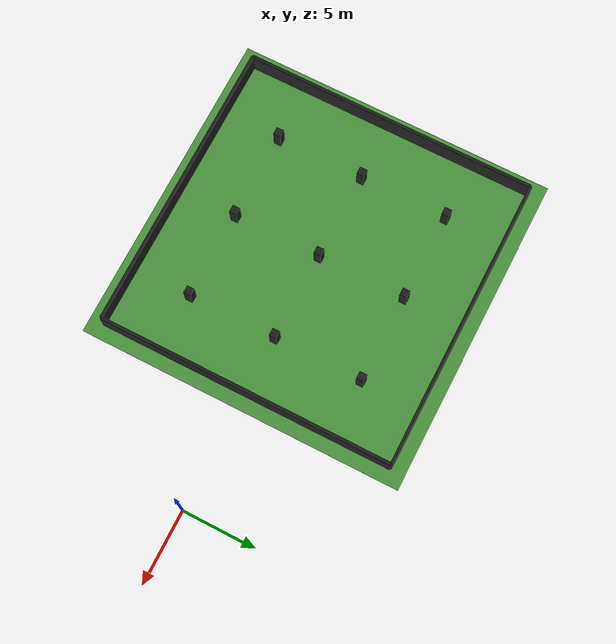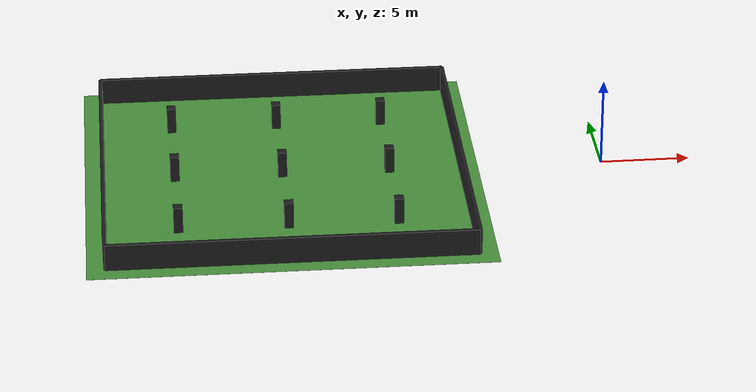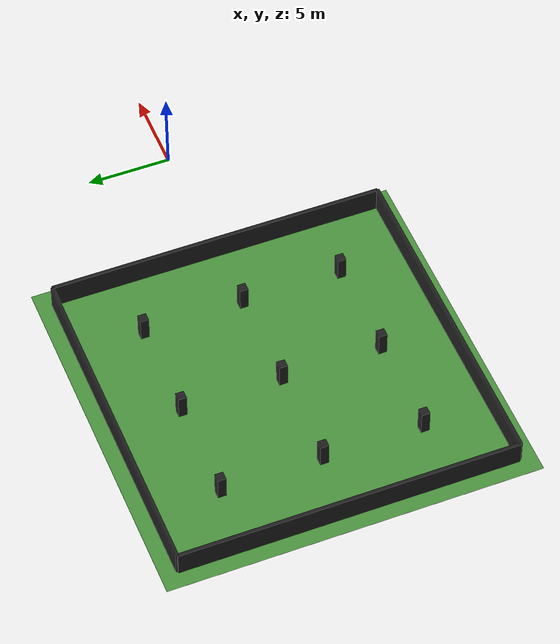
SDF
<?xml version="1.0" ?>
<sdf version="1.6">
  <world name="playground">

    <!--############### from small_city.world ###############-->
    <gui>
      <camera name="user_camera">
        <pose>-18 0 30 0 1.57 -3.14</pose>
      </camera>
    </gui>

    <scene>
      <grid>false</grid>
      <origin_visual>false</origin_visual>
      <ambient>0.85 0.85 0.85 1</ambient>
      <sky/>
      <background>0.35 0.35 0.35 1.0</background>
    </scene>

    <physics name='default_physics' default='0' type='ode'>
      <max_step_size>0.005</max_step_size>
      <real_time_factor>1</real_time_factor>
      <real_time_update_rate>200</real_time_update_rate>
    </physics>

    <light type="directional" name="sun">
      <pose>0 0 1000 0 0 0</pose>
      <cast_shadows>false</cast_shadows>
      <diffuse>0.8 0.8 0.8 1</diffuse>
      <specular>0.5 0.5 0.5 1</specular>
      <attenuation>
        <range>1000</range>
        <constant>0.9</constant>
        <linear>0.01</linear>
        <quadratic>0.001</quadratic>
      </attenuation>
      <direction>-0.5 0.1 -0.4</direction>
    </light>

    <model name="ground_plane">
      <static>true</static>
      <link name="link">
        <collision name="collision">
          <geometry>
            <plane>
              <normal>0 0 1</normal>
              <size>100 100</size>
            </plane>
          </geometry>
          <surface>
            <friction>
              <ode>
                <mu>100</mu>
                <mu2>50</mu2>
              </ode>
            </friction>
          </surface>
        </collision>
      </link>
    </model>

    <!-- trawniki -->
    <model name="grass1">
      <static>true</static>
      <link name="link">
        <pose>-18 0 0 0 0 0</pose>
        <collision name="collision">
          <geometry><box><size>22 22 0.005</size></box></geometry>
        </collision>
        <visual name="visual">
          <geometry><box><size>22 22 0.005</size></box></geometry>
          <material><script>
            <uri>file://media/materials/scripts/gazebo.material</uri>
            <name>Gazebo/Grass</name>
          </script></material>
        </visual>
      </link>
    </model>

    <!--############### from small_city.world ###############-->

    <!-- Asphalt base (thin layer, grey) -->
    <model name="asphalt_base">
      <static>true</static>
      <link name="asphalt_link">
        <pose>-18 0 -0.01 0 0 0</pose>
        <visual name="asphalt_visual">
          <geometry>
            <box>
              <size>20 20 0.01</size>
            </box>
          </geometry>
          <material>
            <ambient>0.7 0.7 0.7 1</ambient>
            <diffuse>0.7 0.7 0.7 1</diffuse>
          </material>
        </visual>
      </link>
    </model>

    <!-- Static room walls (20x20m, height 1.5m, centered at -18,0), black -->
    <model name="room_walls">
      <static>true</static>
      <link name="walls_link">
        <!-- North wall -->
        <visual name="wall_north_visual">
          <pose>-18 10 0.75 0 0 0</pose>
          <geometry><box><size>20 0.2 1.5</size></box></geometry>
          <material><script><name>Gazebo/Black</name></script></material>
        </visual>
        <collision name="wall_north_collision">
          <pose>-18 10 0.75 0 0 0</pose>
          <geometry><box><size>20 0.2 1.5</size></box></geometry>
        </collision>
        <!-- South wall -->
        <visual name="wall_south_visual">
          <pose>-18 -10 0.75 0 0 0</pose>
          <geometry><box><size>20 0.2 1.5</size></box></geometry>
          <material><script><name>Gazebo/Black</name></script></material>
        </visual>
        <collision name="wall_south_collision">
          <pose>-18 -10 0.75 0 0 0</pose>
          <geometry><box><size>20 0.2 1.5</size></box></geometry>
        </collision>
        <!-- East wall -->
        <visual name="wall_east_visual">
          <pose>-8 0 0.75 0 0 0</pose>
          <geometry><box><size>0.2 20 1.5</size></box></geometry>
          <material><script><name>Gazebo/Black</name></script></material>
        </visual>
        <collision name="wall_east_collision">
          <pose>-8 0 0.75 0 0 0</pose>
          <geometry><box><size>0.2 20 1.5</size></box></geometry>
        </collision>
        <!-- West wall -->
        <visual name="wall_west_visual">
          <pose>-28 0 0.75 0 0 0</pose>
          <geometry><box><size>0.2 20 1.5</size></box></geometry>
          <material><script><name>Gazebo/Black</name></script></material>
        </visual>
        <collision name="wall_west_collision">
          <pose>-28 0 0.75 0 0 0</pose>
          <geometry><box><size>0.2 20 1.5</size></box></geometry>
        </collision>
      </link>
    </model>

    <!-- Nine pillars (3x3 grid, 0.5x0.5x1.5m), black, spaced 6m apart, center at -18,0 -->
    <!-- Row 1 (x=-24) -->
    <model name="pillar_1_1">
      <static>true</static>
      <link name="link">
        <pose>-24 -6 0.75 0 0 0</pose>
        <visual name="vis">
          <geometry><box><size>0.5 0.5 1.5</size></box></geometry>
          <material><script><name>Gazebo/Black</name></script></material>
        </visual>
        <collision name="col">
          <geometry><box><size>0.5 0.5 1.5</size></box></geometry>
        </collision>
      </link>
    </model>
    <model name="pillar_1_2">
      <static>true</static>
      <link name="link">
        <pose>-24 0 0.75 0 0 0</pose>
        <visual name="vis">
          <geometry><box><size>0.5 0.5 1.5</size></box></geometry>
          <material><script><name>Gazebo/Black</name></script></material>
        </visual>
        <collision name="col">
          <geometry><box><size>0.5 0.5 1.5</size></box></geometry>
        </collision>
      </link>
    </model>
    <model name="pillar_1_3">
      <static>true</static>
      <link name="link">
        <pose>-24 6 0.75 0 0 0</pose>
        <visual name="vis">
          <geometry><box><size>0.5 0.5 1.5</size></box></geometry>
          <material><script><name>Gazebo/Black</name></script></material>
        </visual>
        <collision name="col">
          <geometry><box><size>0.5 0.5 1.5</size></box></geometry>
        </collision>
      </link>
    </model>
    <!-- Row 2 (x=-18) -->
    <model name="pillar_2_1">
      <static>true</static>
      <link name="link">
        <pose>-18 -6 0.75 0 0 0</pose>
        <visual name="vis">
          <geometry><box><size>0.5 0.5 1.5</size></box></geometry>
          <material><script><name>Gazebo/Black</name></script></material>
        </visual>
        <collision name="col">
          <geometry><box><size>0.5 0.5 1.5</size></box></geometry>
        </collision>
      </link>
    </model>
    <model name="pillar_2_2">
      <static>true</static>
      <link name="link">
        <pose>-18 0 0.75 0 0 0</pose>
        <visual name="vis">
          <geometry><box><size>0.5 0.5 1.5</size></box></geometry>
          <material><script><name>Gazebo/Black</name></script></material>
        </visual>
        <collision name="col">
          <geometry><box><size>0.5 0.5 1.5</size></box></geometry>
        </collision>
      </link>
    </model>
    <model name="pillar_2_3">
      <static>true</static>
      <link name="link">
        <pose>-18 6 0.75 0 0 0</pose>
        <visual name="vis">
          <geometry><box><size>0.5 0.5 1.5</size></box></geometry>
          <material><script><name>Gazebo/Black</name></script></material>
        </visual>
        <collision name="col">
          <geometry><box><size>0.5 0.5 1.5</size></box></geometry>
        </collision>
      </link>
    </model>
    <!-- Row 3 (x=-12) -->
    <model name="pillar_3_1">
      <static>true</static>
      <link name="link">
        <pose>-12 -6 0.75 0 0 0</pose>
        <visual name="vis">
          <geometry><box><size>0.5 0.5 1.5</size></box></geometry>
          <material><script><name>Gazebo/Black</name></script></material>
        </visual>
        <collision name="col">
          <geometry><box><size>0.5 0.5 1.5</size></box></geometry>
        </collision>
      </link>
    </model>
    <model name="pillar_3_2">
      <static>true</static>
      <link name="link">
        <pose>-12 0 0.75 0 0 0</pose>
        <visual name="vis">
          <geometry><box><size>0.5 0.5 1.5</size></box></geometry>
          <material><script><name>Gazebo/Black</name></script></material>
        </visual>
        <collision name="col">
          <geometry><box><size>0.5 0.5 1.5</size></box></geometry>
        </collision>
      </link>
    </model>
    <model name="pillar_3_3">
      <static>true</static>
      <link name="link">
        <pose>-12 6 0.75 0 0 0</pose>
        <visual name="vis">
          <geometry><box><size>0.5 0.5 1.5</size></box></geometry>
          <material><script><name>Gazebo/Black</name></script></material>
        </visual>
        <collision name="col">
          <geometry><box><size>0.5 0.5 1.5</size></box></geometry>
        </collision>
      </link>
    </model>

  </world>
</sdf>
